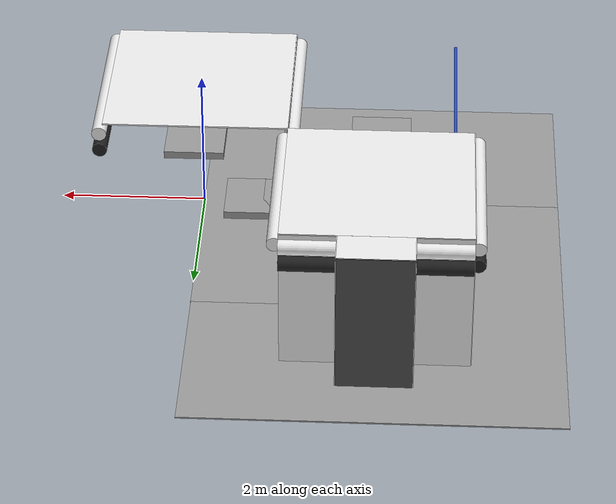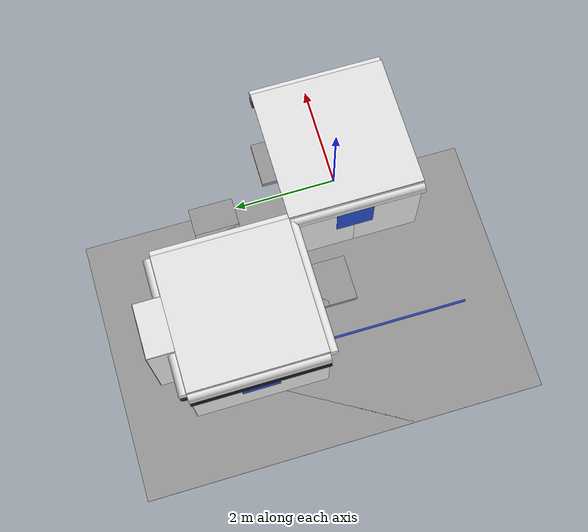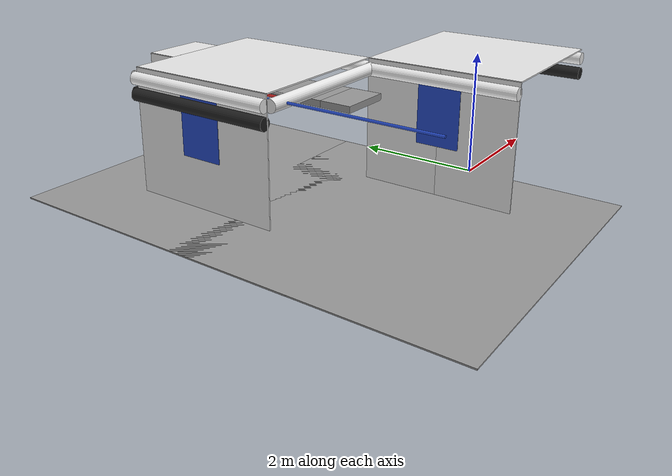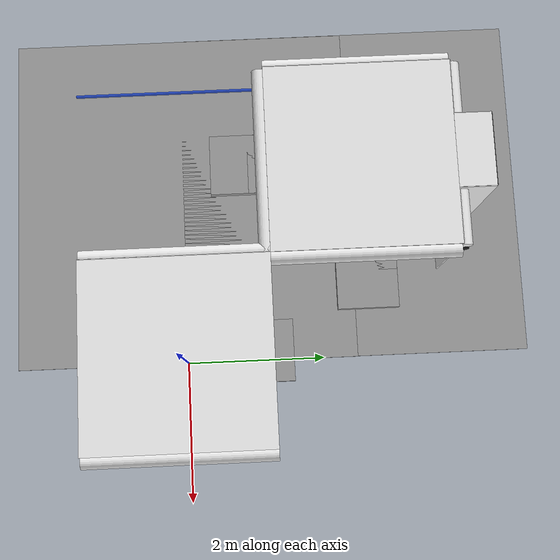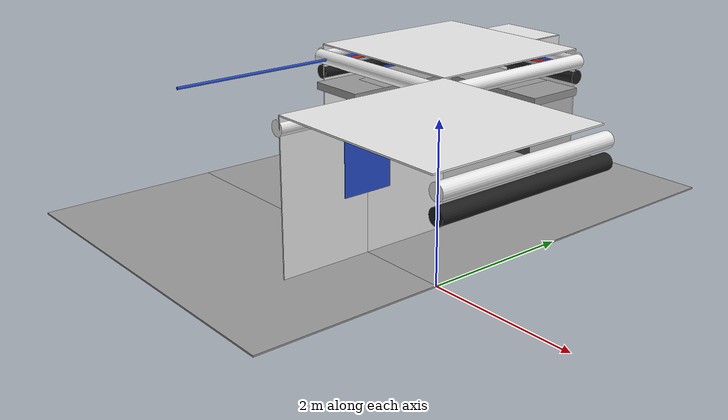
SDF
<sdf version="1.6">
 <world name="default">
  <model name="wall_left_0_0_0_0">
   <static>1</static>
   <pose>-1.25 0.0 1.0 0.0 0.0 1.57</pose>
   <link name="link">
    <collision name="collision"><geometry><box><size>2.5 0.02 2.0</size></box></geometry></collision>
    <visual name="visual">
     <material>
      <script><name>Gazebo/White</name><uri>file://media/materials/scripts/gazebo.material</uri></script>
     </material>
     <geometry><box><size>2.5 0.02 2.0</size></box></geometry>
    </visual>
   </link>
  </model>
  <model name="wall_top_0_0_0_0">
   <static>1</static>
   <pose>0.0 0.0 2.0 1.57 0.0 0.0</pose>
   <link name="link">
    <collision name="collision"><geometry><box><size>2.5 0.02 2.5</size></box></geometry></collision>
    <visual name="visual">
     <material>
      <script><name>Gazebo/White</name><uri>file://media/materials/scripts/gazebo.material</uri></script>
     </material>
     <geometry><box><size>2.5 0.02 2.5</size></box></geometry>
    </visual>
   </link>
  </model>
  <model name="ceiling_1_0_0_0_0">
   <pose>0.0 0.0 1.7 0.0 0.0 0.0</pose>
   <link name="link_1">
    <visual name="visual">
     <geometry><box><size>0.8 1 0.1</size></box></geometry>
     <material>
      <script><uri>file://media/materials/scripts/gazebo.material</uri><name>Gazebo/Grey</name></script>
     </material>
    </visual>
    <collision name="collision"><geometry><box><size>0.8 1 0.1</size></box></geometry></collision>
   </link>
   <static>1</static>
  </model>
  <model name="ceiling_1_0_0_2_0">
   <pose>0.0 1.0 1.7 0.0 0.0 0.0</pose>
   <link name="link_1">
    <visual name="visual">
     <geometry><box><size>0.8 1 0.1</size></box></geometry>
     <material>
      <script><uri>file://media/materials/scripts/gazebo.material</uri><name>Gazebo/Grey</name></script>
     </material>
    </visual>
    <collision name="collision"><geometry><box><size>0.8 1 0.1</size></box></geometry></collision>
   </link>
   <static>1</static>
  </model>
  <model name="white_pipe_left_0_0_0_0">
   <static>1</static>
   <pose>0.0 0.0 1.84 0.0 0.0 0.0</pose>
   <link name="link_0">
    <visual name="visual">
     <pose>-1.3 0 0 1.57 0 0</pose>
     <geometry><cylinder><radius>0.1</radius><length>2.5</length></cylinder></geometry>
     <material>
      <script><uri>file://media/materials/scripts/gazebo.material</uri><name>Gazebo/White</name></script>
     </material>
    </visual>
    <collision name="collision">
     <pose>-1.3 0 0 1.57 0 0</pose>
     <geometry><cylinder><radius>0.1</radius><length>2.5</length></cylinder></geometry>
    </collision>
   </link>
  </model>
  <model name="white_pipe_right_0_0_0_0">
   <static>1</static>
   <pose>0.0 0.0 1.84 0.0 0.0 0.0</pose>
   <link name="link_0">
    <visual name="visual">
     <pose>1.3 0 0 1.57 0 0</pose>
     <geometry><cylinder><radius>0.1</radius><length>2.5</length></cylinder></geometry>
     <material>
      <script><uri>file://media/materials/scripts/gazebo.material</uri><name>Gazebo/White</name></script>
     </material>
    </visual>
    <collision name="collision">
     <pose>1.3 0 0 1.57 0 0</pose>
     <geometry><cylinder><radius>0.1</radius><length>2.5</length></cylinder></geometry>
    </collision>
   </link>
  </model>
  <model name="black_pipe_right_0_0_0_0">
   <static>1</static>
   <pose>0.0 0.0 1.84 0.0 0.0 0.0</pose>
   <link name="link_0">
    <visual name="visual">
     <pose>1.3 0 -0.25 1.57 0 0</pose>
     <geometry><cylinder><radius>0.1</radius><length>2.5</length></cylinder></geometry>
     <material>
      <script><uri>file://media/materials/scripts/gazebo.material</uri><name>Gazebo/Black</name></script>
     </material>
    </visual>
    <collision name="collision">
     <pose>1.3 0 -0.25 1.57 0 0</pose>
     <geometry><cylinder><radius>0.1</radius><length>2.5</length></cylinder></geometry>
    </collision>
   </link>
  </model>
  <model name="ceiling_1_0_1_1_3">
   <pose>-1.0 2.5 1.7 0.0 0.0 1.57</pose>
   <link name="link_1">
    <visual name="visual">
     <geometry><box><size>0.8 1 0.1</size></box></geometry>
     <material>
      <script><uri>file://media/materials/scripts/gazebo.material</uri><name>Gazebo/Grey</name></script>
     </material>
    </visual>
    <collision name="collision"><geometry><box><size>0.8 1 0.1</size></box></geometry></collision>
   </link>
   <static>1</static>
  </model>
  <model name="wall_front_-1_1_0_3">
   <static>1</static>
   <pose>-3.75 2.5 1.0 0.0 0.0 1.57</pose>
   <link name="link">
    <collision name="collision"><geometry><box><size>2.5 0.02 2.0</size></box></geometry></collision>
    <visual name="visual">
     <material>
      <script><name>Gazebo/White</name><uri>file://media/materials/scripts/gazebo.material</uri></script>
     </material>
     <geometry><box><size>2.5 0.02 2.0</size></box></geometry>
    </visual>
   </link>
  </model>
  <model name="wall_top_-1_1_0_3">
   <static>1</static>
   <pose>-2.5 2.5 2.0 1.57 0.0 1.57</pose>
   <link name="link">
    <collision name="collision"><geometry><box><size>2.5 0.02 2.5</size></box></geometry></collision>
    <visual name="visual">
     <material>
      <script><name>Gazebo/White</name><uri>file://media/materials/scripts/gazebo.material</uri></script>
     </material>
     <geometry><box><size>2.5 0.02 2.5</size></box></geometry>
    </visual>
   </link>
  </model>
  <model name="ceiling_1_-1_1_0_3">
   <pose>-1.5 2.5 1.7 0.0 0.0 1.57</pose>
   <link name="link_1">
    <visual name="visual">
     <geometry><box><size>0.8 1 0.1</size></box></geometry>
     <material>
      <script><uri>file://media/materials/scripts/gazebo.material</uri><name>Gazebo/Grey</name></script>
     </material>
    </visual>
    <collision name="collision"><geometry><box><size>0.8 1 0.1</size></box></geometry></collision>
   </link>
   <static>1</static>
  </model>
  <model name="ceiling_1_-1_1_1_3">
   <pose>-2.5 1.5 1.7 0.0 0.0 3.14</pose>
   <link name="link_1">
    <visual name="visual">
     <geometry><box><size>0.8 1 0.1</size></box></geometry>
     <material>
      <script><uri>file://media/materials/scripts/gazebo.material</uri><name>Gazebo/Grey</name></script>
     </material>
    </visual>
    <collision name="collision"><geometry><box><size>0.8 1 0.1</size></box></geometry></collision>
   </link>
   <static>1</static>
  </model>
  <model name="white_pipe_left_-1_1_0_3">
   <static>1</static>
   <pose>-2.5 2.5 1.84 0.0 0.0 1.57</pose>
   <link name="link_0">
    <visual name="visual">
     <pose>-1.3 0 0 1.57 0 0</pose>
     <geometry><cylinder><radius>0.1</radius><length>2.5</length></cylinder></geometry>
     <material>
      <script><uri>file://media/materials/scripts/gazebo.material</uri><name>Gazebo/White</name></script>
     </material>
    </visual>
    <collision name="collision">
     <pose>-1.3 0 0 1.57 0 0</pose>
     <geometry><cylinder><radius>0.1</radius><length>2.5</length></cylinder></geometry>
    </collision>
   </link>
  </model>
  <model name="white_pipe_right_-1_1_0_3">
   <static>1</static>
   <pose>-2.5 2.5 1.84 0.0 0.0 1.57</pose>
   <link name="link_0">
    <visual name="visual">
     <pose>1.3 0 0 1.57 0 0</pose>
     <geometry><cylinder><radius>0.1</radius><length>2.5</length></cylinder></geometry>
     <material>
      <script><uri>file://media/materials/scripts/gazebo.material</uri><name>Gazebo/White</name></script>
     </material>
    </visual>
    <collision name="collision">
     <pose>1.3 0 0 1.57 0 0</pose>
     <geometry><cylinder><radius>0.1</radius><length>2.5</length></cylinder></geometry>
    </collision>
   </link>
  </model>
  <model name="black_pipe_right_-1_1_0_3">
   <static>1</static>
   <pose>-2.5 2.5 1.84 0.0 0.0 1.57</pose>
   <link name="link_0">
    <visual name="visual">
     <pose>1.3 0 -0.25 1.57 0 0</pose>
     <geometry><cylinder><radius>0.1</radius><length>2.5</length></cylinder></geometry>
     <material>
      <script><uri>file://media/materials/scripts/gazebo.material</uri><name>Gazebo/Black</name></script>
     </material>
    </visual>
    <collision name="collision">
     <pose>1.3 0 -0.25 1.57 0 0</pose>
     <geometry><cylinder><radius>0.1</radius><length>2.5</length></cylinder></geometry>
    </collision>
   </link>
  </model>
  <model name="grey_pipe_right_-1_1_0_3">
   <static>1</static>
   <pose>-2.5 2.5 1.84 0.0 0.0 1.57</pose>
   <link name="link_0">
    <visual name="visual">
     <pose>0.7 0 0 1.57 0 0</pose>
     <geometry><cylinder><radius>0.02</radius><length>2.5</length></cylinder></geometry>
     <material>
      <script><uri>file://media/materials/scripts/gazebo.material</uri><name>Gazebo/Grey</name></script>
     </material>
    </visual>
    <collision name="collision">
     <pose>0.7 0 0 1.57 0 0</pose>
     <geometry><cylinder><radius>0.02</radius><length>2.5</length></cylinder></geometry>
    </collision>
   </link>
  </model>
  <model name="red_pipe_right_-1_1_0_3">
   <static>1</static>
   <pose>-2.5 2.5 1.84 0.0 0.0 1.57</pose>
   <link name="link_0">
    <visual name="visual">
     <pose>0.85 0 0 1.57 0 0</pose>
     <geometry><cylinder><radius>0.02</radius><length>2.5</length></cylinder></geometry>
     <material>
      <script><uri>file://media/materials/scripts/gazebo.material</uri><name>Gazebo/Red</name></script>
     </material>
    </visual>
    <collision name="collision">
     <pose>0.85 0 0 1.57 0 0</pose>
     <geometry><cylinder><radius>0.02</radius><length>2.5</length></cylinder></geometry>
    </collision>
   </link>
  </model>
  <model name="blue_pipe_right_-1_1_0_3">
   <static>1</static>
   <pose>-2.5 2.5 1.84 0.0 0.0 1.57</pose>
   <link name="link_0">
    <visual name="visual">
     <pose>1 0 0 1.57 0 0</pose>
     <geometry><cylinder><radius>0.02</radius><length>2.5</length></cylinder></geometry>
     <material>
      <script><uri>file://media/materials/scripts/gazebo.material</uri><name>Gazebo/Blue</name></script>
     </material>
    </visual>
    <collision name="collision">
     <pose>1 0 0 1.57 0 0</pose>
     <geometry><cylinder><radius>0.02</radius><length>2.5</length></cylinder></geometry>
    </collision>
   </link>
  </model>
  <model name="white_pipe_left_1_-1_1_0_3">
   <static>1</static>
   <pose>-2.5 2.5 1.84 0.0 0.0 3.14</pose>
   <link name="link_0">
    <visual name="visual">
     <pose>-1.3 0 0 1.57 0 0</pose>
     <geometry><cylinder><radius>0.1</radius><length>2.5</length></cylinder></geometry>
     <material>
      <script><uri>file://media/materials/scripts/gazebo.material</uri><name>Gazebo/White</name></script>
     </material>
    </visual>
    <collision name="collision">
     <pose>-1.3 0 0 1.57 0 0</pose>
     <geometry><cylinder><radius>0.1</radius><length>2.5</length></cylinder></geometry>
    </collision>
   </link>
  </model>
  <model name="white_pipe_right_1_-1_1_0_3">
   <static>1</static>
   <pose>-2.5 2.5 1.84 0.0 0.0 3.14</pose>
   <link name="link_0">
    <visual name="visual">
     <pose>1.3 0 0 1.57 0 0</pose>
     <geometry><cylinder><radius>0.1</radius><length>2.5</length></cylinder></geometry>
     <material>
      <script><uri>file://media/materials/scripts/gazebo.material</uri><name>Gazebo/White</name></script>
     </material>
    </visual>
    <collision name="collision">
     <pose>1.3 0 0 1.57 0 0</pose>
     <geometry><cylinder><radius>0.1</radius><length>2.5</length></cylinder></geometry>
    </collision>
   </link>
  </model>
  <model name="black_pipe_right_1_-1_1_0_3">
   <static>1</static>
   <pose>-2.5 2.5 1.84 0.0 0.0 3.14</pose>
   <link name="link_0">
    <visual name="visual">
     <pose>1.3 0 -0.25 1.57 0 0</pose>
     <geometry><cylinder><radius>0.1</radius><length>2.5</length></cylinder></geometry>
     <material>
      <script><uri>file://media/materials/scripts/gazebo.material</uri><name>Gazebo/Black</name></script>
     </material>
    </visual>
    <collision name="collision">
     <pose>1.3 0 -0.25 1.57 0 0</pose>
     <geometry><cylinder><radius>0.1</radius><length>2.5</length></cylinder></geometry>
    </collision>
   </link>
  </model>
  <model name="grey_pipe_right_1_-1_1_0_3">
   <static>1</static>
   <pose>-2.5 2.5 1.84 0.0 0.0 3.14</pose>
   <link name="link_0">
    <visual name="visual">
     <pose>0.7 0 0 1.57 0 0</pose>
     <geometry><cylinder><radius>0.02</radius><length>2.5</length></cylinder></geometry>
     <material>
      <script><uri>file://media/materials/scripts/gazebo.material</uri><name>Gazebo/Grey</name></script>
     </material>
    </visual>
    <collision name="collision">
     <pose>0.7 0 0 1.57 0 0</pose>
     <geometry><cylinder><radius>0.02</radius><length>2.5</length></cylinder></geometry>
    </collision>
   </link>
  </model>
  <model name="red_pipe_right_1_-1_1_0_3">
   <static>1</static>
   <pose>-2.5 2.5 1.84 0.0 0.0 3.14</pose>
   <link name="link_0">
    <visual name="visual">
     <pose>0.85 0 0 1.57 0 0</pose>
     <geometry><cylinder><radius>0.02</radius><length>2.5</length></cylinder></geometry>
     <material>
      <script><uri>file://media/materials/scripts/gazebo.material</uri><name>Gazebo/Red</name></script>
     </material>
    </visual>
    <collision name="collision">
     <pose>0.85 0 0 1.57 0 0</pose>
     <geometry><cylinder><radius>0.02</radius><length>2.5</length></cylinder></geometry>
    </collision>
   </link>
  </model>
  <model name="blue_pipe_right_1_-1_1_0_3">
   <static>1</static>
   <pose>-2.5 2.5 1.84 0.0 0.0 3.14</pose>
   <link name="link_0">
    <visual name="visual">
     <pose>1 0 0 1.57 0 0</pose>
     <geometry><cylinder><radius>0.02</radius><length>2.5</length></cylinder></geometry>
     <material>
      <script><uri>file://media/materials/scripts/gazebo.material</uri><name>Gazebo/Blue</name></script>
     </material>
    </visual>
    <collision name="collision">
     <pose>1 0 0 1.57 0 0</pose>
     <geometry><cylinder><radius>0.02</radius><length>2.5</length></cylinder></geometry>
    </collision>
   </link>
  </model>
  <model name="panel_-1_1_0_3">
   <static>1</static>
   <pose>-3.75 2.5 1.3 0.0 0.0 3.14</pose>
   <link name="link">
    <collision name="collision"><geometry><box><size>0.04 0.7 1</size></box></geometry></collision>
    <visual name="visual">
     <material>
      <script><name>Gazebo/Blue</name><uri>file://media/materials/scripts/gazebo.material</uri></script>
     </material>
     <geometry><box><size>0.04 0.7 1</size></box></geometry>
    </visual>
   </link>
  </model>
  <model name="wall_right_front_left_-1_1_0_3">
   <static>1</static>
   <pose>-3.375 3.75 1.0 0.0 0.0 3.14</pose>
   <link name="link">
    <collision name="collision"><geometry><box><size>0.75 0.02 2.0</size></box></geometry></collision>
    <visual name="visual">
     <material>
      <script><name>Gazebo/White</name><uri>file://media/materials/scripts/gazebo.material</uri></script>
     </material>
     <geometry><box><size>0.75 0.02 2.0</size></box></geometry>
    </visual>
   </link>
  </model>
  <model name="wall_right_front_right_-1_1_0_3">
   <static>1</static>
   <pose>-1.625 3.75 1.0 0.0 0.0 3.14</pose>
   <link name="link">
    <collision name="collision"><geometry><box><size>0.75 0.02 2.0</size></box></geometry></collision>
    <visual name="visual">
     <material>
      <script><name>Gazebo/White</name><uri>file://media/materials/scripts/gazebo.material</uri></script>
     </material>
     <geometry><box><size>0.75 0.02 2.0</size></box></geometry>
    </visual>
   </link>
  </model>
  <model name="wall_right_front_up_-1_1_0_3">
   <static>1</static>
   <pose>-2.5 3.75 2.0 0.0 0.0 3.14</pose>
   <link name="link">
    <collision name="collision"><geometry><box><size>1.0 0.02 0.001</size></box></geometry></collision>
    <visual name="visual">
     <material>
      <script><name>Gazebo/White</name><uri>file://media/materials/scripts/gazebo.material</uri></script>
     </material>
     <geometry><box><size>1.0 0.02 0.001</size></box></geometry>
    </visual>
   </link>
  </model>
  <model name="wall_right_inside_back_-1_1_0_3">
   <static>1</static>
   <pose>-2.5 4.25 1.0 0.0 0.0 3.14</pose>
   <link name="link">
    <collision name="collision"><geometry><box><size>1 0.02 2</size></box></geometry></collision>
    <visual name="visual">
     <material>
      <script><name>Gazebo/DarkGrey</name><uri>file://media/materials/scripts/gazebo.material</uri></script>
     </material>
     <geometry><box><size>1 0.02 2</size></box></geometry>
    </visual>
   </link>
  </model>
  <model name="wall_right_inside_left_-1_1_0_3">
   <static>1</static>
   <pose>-3.0 4.0 1.0 0.0 0.0 1.57</pose>
   <link name="link">
    <collision name="collision"><geometry><box><size>0.5 0.02 2</size></box></geometry></collision>
    <visual name="visual">
     <material>
      <script><name>Gazebo/White</name><uri>file://media/materials/scripts/gazebo.material</uri></script>
     </material>
     <geometry><box><size>0.5 0.02 2</size></box></geometry>
    </visual>
   </link>
  </model>
  <model name="wall_right_inside_right_-1_1_0_3">
   <static>1</static>
   <pose>-2.0 4.0 1.0 0.0 0.0 1.57</pose>
   <link name="link">
    <collision name="collision"><geometry><box><size>0.5 0.02 2</size></box></geometry></collision>
    <visual name="visual">
     <material>
      <script><name>Gazebo/White</name><uri>file://media/materials/scripts/gazebo.material</uri></script>
     </material>
     <geometry><box><size>0.5 0.02 2</size></box></geometry>
    </visual>
   </link>
  </model>
  <model name="wall_right_inside_top_-1_1_0_3">
   <static>1</static>
   <pose>-2.5 4.0 2.0 1.57 0.0 3.14</pose>
   <link name="link">
    <collision name="collision"><geometry><box><size>1 0.02 0.5</size></box></geometry></collision>
    <visual name="visual">
     <material>
      <script><name>Gazebo/White</name><uri>file://media/materials/scripts/gazebo.material</uri></script>
     </material>
     <geometry><box><size>1 0.02 0.5</size></box></geometry>
    </visual>
   </link>
  </model>
  <model name="wall_bottom_-1_1_0_3">
   <static>1</static>
   <pose>-2.5 2.5 0.0 0.0 0.0 1.57</pose>
   <link name="link">
    <collision name="collision"><geometry><box><size>5.0 5.0 0.02</size></box></geometry></collision>
    <visual name="visual">
     <material>
      <script><name>Gazebo/Grey</name><uri>file://media/materials/scripts/gazebo.material</uri></script>
     </material>
     <geometry><box><size>5.0 5.0 0.02</size></box></geometry>
    </visual>
   </link>
  </model>
  <model name="wall_left_-1_0_0_1">
   <static>1</static>
   <pose>-1.25 0.0 1.0 0.0 0.0 4.71</pose>
   <link name="link">
    <collision name="collision"><geometry><box><size>2.5 0.02 2.0</size></box></geometry></collision>
    <visual name="visual">
     <material>
      <script><name>Gazebo/White</name><uri>file://media/materials/scripts/gazebo.material</uri></script>
     </material>
     <geometry><box><size>2.5 0.02 2.0</size></box></geometry>
    </visual>
   </link>
  </model>
  <model name="ceiling_1_-1_0_1_1">
   <pose>-2.5 1.0 1.7 0.0 0.0 3.14</pose>
   <link name="link_1">
    <visual name="visual">
     <geometry><box><size>0.8 1 0.1</size></box></geometry>
     <material>
      <script><uri>file://media/materials/scripts/gazebo.material</uri><name>Gazebo/Grey</name></script>
     </material>
    </visual>
    <collision name="collision"><geometry><box><size>0.8 1 0.1</size></box></geometry></collision>
   </link>
   <static>1</static>
  </model>
  <model name="blue_pipe_right_-1_0_0_1">
   <static>1</static>
   <pose>-2.5 0.0 1.84 0.0 0.0 3.14</pose>
   <link name="link_0">
    <visual name="visual">
     <pose>1 0 0 1.57 0 0</pose>
     <geometry><cylinder><radius>0.02</radius><length>2.5</length></cylinder></geometry>
     <material>
      <script><uri>file://media/materials/scripts/gazebo.material</uri><name>Gazebo/Blue</name></script>
     </material>
    </visual>
    <collision name="collision">
     <pose>1 0 0 1.57 0 0</pose>
     <geometry><cylinder><radius>0.02</radius><length>2.5</length></cylinder></geometry>
    </collision>
   </link>
  </model>
  <model name="panel_-1_0_0_1">
   <static>1</static>
   <pose>-1.25 0.0 1.3 0.0 0.0 3.14</pose>
   <link name="link">
    <collision name="collision"><geometry><box><size>0.04 0.7 1</size></box></geometry></collision>
    <visual name="visual">
     <material>
      <script><name>Gazebo/Blue</name><uri>file://media/materials/scripts/gazebo.material</uri></script>
     </material>
     <geometry><box><size>0.04 0.7 1</size></box></geometry>
    </visual>
   </link>
  </model>
  <model name="wall_bottom_-1_0_0_1">
   <static>1</static>
   <pose>-2.5 0.0 0.0 0.0 0.0 3.14</pose>
   <link name="link">
    <collision name="collision"><geometry><box><size>5.0 5.0 0.02</size></box></geometry></collision>
    <visual name="visual">
     <material>
      <script><name>Gazebo/Grey</name><uri>file://media/materials/scripts/gazebo.material</uri></script>
     </material>
     <geometry><box><size>5.0 5.0 0.02</size></box></geometry>
    </visual>
   </link>
  </model>
 </world>
</sdf>
